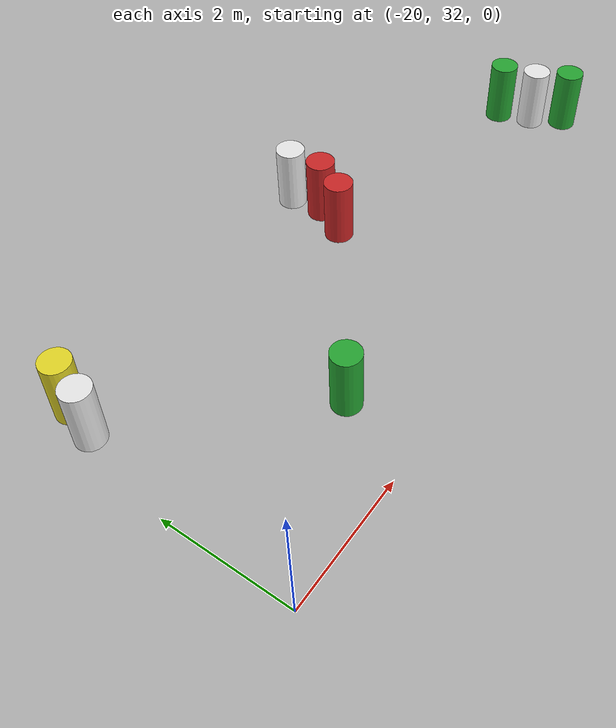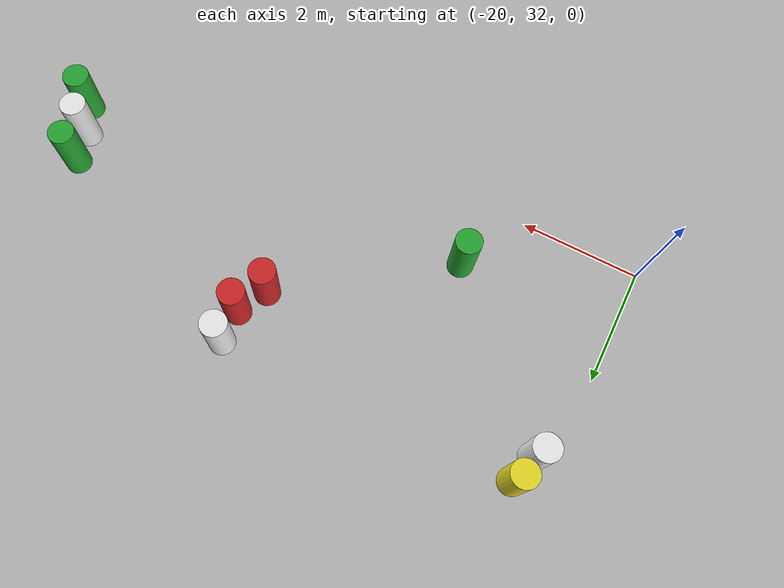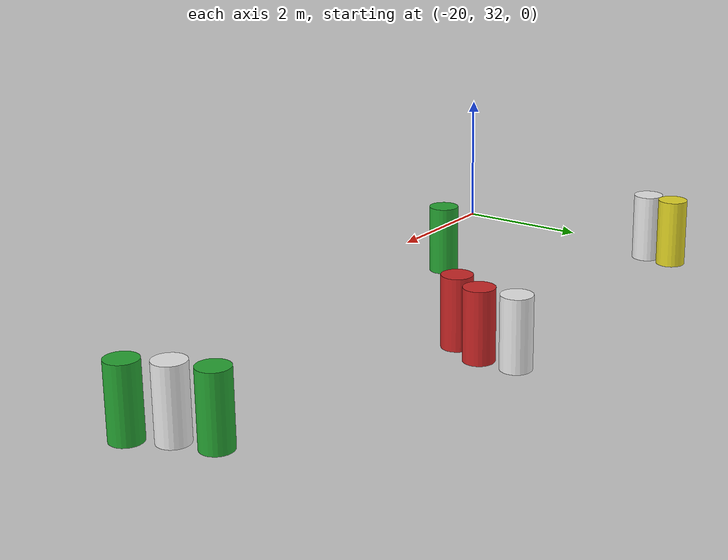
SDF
<sdf version="1.10">
 <world name="IGVC_AutoNav">
  <model name="barrel_0">
   <link name="link">
    <inertial>
     <mass>1</mass>
     <inertia>
      <ixx>0.14583299999999999</ixx>
      <ixy>0</ixy>
      <ixz>0</ixz>
      <iyy>0.14583299999999999</iyy>
      <iyz>0</iyz>
      <izz>0.125</izz>
     </inertia>
    </inertial>
    <visual name="visual">
     <geometry><cylinder><radius>0.222916</radius><length>1.0356700000000001</length></cylinder></geometry>
     <material>
      <script><name>Gazebo/Green</name><uri>file://media/materials/scripts/gazebo.material</uri></script>
      <shader type="pixel"/>
     </material>
    </visual>
    <collision name="collision">
     <geometry><cylinder><radius>0.222916</radius><length>1.0356700000000001</length></cylinder></geometry>
     <surface>
      <friction>
       <ode><mu>1</mu><mu2>1</mu2><fdir1>0 0 0</fdir1><slip1>0</slip1><slip2>0</slip2></ode>
       <torsional>
        <coefficient>1</coefficient>
        <patch_radius>0</patch_radius>
        <surface_radius>0</surface_radius>
        <use_patch_radius>true</use_patch_radius>
        <ode><slip>0</slip></ode>
       </torsional>
      </friction>
      <bounce><restitution_coefficient>0</restitution_coefficient><threshold>1000000</threshold></bounce>
      <contact>
       <collide_without_contact>false</collide_without_contact>
       <collide_without_contact_bitmask>1</collide_without_contact_bitmask>
       <collide_bitmask>1</collide_bitmask>
       <ode>
        <soft_cfm>0</soft_cfm>
        <soft_erp>0.20000000000000001</soft_erp>
        <kp>10000000000000</kp>
        <kd>1</kd>
        <max_vel>0.01</max_vel>
        <min_depth>0</min_depth>
       </ode>
       <bullet>
        <split_impulse>true</split_impulse>
        <split_impulse_penetration_threshold>-0.01</split_impulse_penetration_threshold>
        <soft_cfm>0</soft_cfm>
        <soft_erp>0.20000000000000001</soft_erp>
        <kp>10000000000000</kp>
        <kd>1</kd>
       </bullet>
      </contact>
     </surface>
    </collision>
   </link>
   <static>false</static>
   <pose>-10.530400276184082 34.562625885009766 0.48958452317623902 -1.4886732127141289e-06 -6.1759990028397762e-07 2.569076395842905e-12</pose>
  </model>
  <model name="barrel_22">
   <link name="link">
    <inertial>
     <mass>1</mass>
     <inertia>
      <ixx>0.14583299999999999</ixx>
      <ixy>0</ixy>
      <ixz>0</ixz>
      <iyy>0.14583299999999999</iyy>
      <iyz>0</iyz>
      <izz>0.125</izz>
     </inertia>
    </inertial>
    <visual name="visual">
     <geometry><cylinder><radius>0.222916</radius><length>1.0356700000000001</length></cylinder></geometry>
     <material>
      <script><name>Gazebo/White</name><uri>file://media/materials/scripts/gazebo.material</uri></script>
      <shader type="pixel"/>
     </material>
    </visual>
    <collision name="collision">
     <geometry><cylinder><radius>0.222916</radius><length>1.0356700000000001</length></cylinder></geometry>
     <surface>
      <friction>
       <ode><mu>1</mu><mu2>1</mu2><fdir1>0 0 0</fdir1><slip1>0</slip1><slip2>0</slip2></ode>
       <torsional>
        <coefficient>1</coefficient>
        <patch_radius>0</patch_radius>
        <surface_radius>0</surface_radius>
        <use_patch_radius>true</use_patch_radius>
        <ode><slip>0</slip></ode>
       </torsional>
      </friction>
      <bounce><restitution_coefficient>0</restitution_coefficient><threshold>1000000</threshold></bounce>
      <contact>
       <collide_without_contact>false</collide_without_contact>
       <collide_without_contact_bitmask>1</collide_without_contact_bitmask>
       <collide_bitmask>1</collide_bitmask>
       <ode>
        <soft_cfm>0</soft_cfm>
        <soft_erp>0.20000000000000001</soft_erp>
        <kp>10000000000000</kp>
        <kd>1</kd>
        <max_vel>0.01</max_vel>
        <min_depth>0</min_depth>
       </ode>
       <bullet>
        <split_impulse>true</split_impulse>
        <split_impulse_penetration_threshold>-0.01</split_impulse_penetration_threshold>
        <soft_cfm>0</soft_cfm>
        <soft_erp>0.20000000000000001</soft_erp>
        <kp>10000000000000</kp>
        <kd>1</kd>
       </bullet>
      </contact>
     </surface>
    </collision>
   </link>
   <static>false</static>
   <pose>-14.483590126037598 36.203399658203125 0.49048651766393375 -1.1107967514665701e-16 -2.356607832990749e-16 -1.1145869038604166e-18</pose>
  </model>
  <model name="barrel_24">
   <link name="link">
    <inertial>
     <mass>1</mass>
     <inertia>
      <ixx>0.14583299999999999</ixx>
      <ixy>0</ixy>
      <ixz>0</ixz>
      <iyy>0.14583299999999999</iyy>
      <iyz>0</iyz>
      <izz>0.125</izz>
     </inertia>
    </inertial>
    <visual name="visual">
     <geometry><cylinder><radius>0.222916</radius><length>1.0356700000000001</length></cylinder></geometry>
     <material>
      <script><name>Gazebo/White</name><uri>file://media/materials/scripts/gazebo.material</uri></script>
      <shader type="pixel"/>
     </material>
    </visual>
    <collision name="collision">
     <geometry><cylinder><radius>0.222916</radius><length>1.0356700000000001</length></cylinder></geometry>
     <surface>
      <friction>
       <ode><mu>1</mu><mu2>1</mu2><fdir1>0 0 0</fdir1><slip1>0</slip1><slip2>0</slip2></ode>
       <torsional>
        <coefficient>1</coefficient>
        <patch_radius>0</patch_radius>
        <surface_radius>0</surface_radius>
        <use_patch_radius>true</use_patch_radius>
        <ode><slip>0</slip></ode>
       </torsional>
      </friction>
      <bounce><restitution_coefficient>0</restitution_coefficient><threshold>1000000</threshold></bounce>
      <contact>
       <collide_without_contact>false</collide_without_contact>
       <collide_without_contact_bitmask>1</collide_without_contact_bitmask>
       <collide_bitmask>1</collide_bitmask>
       <ode>
        <soft_cfm>0</soft_cfm>
        <soft_erp>0.20000000000000001</soft_erp>
        <kp>10000000000000</kp>
        <kd>1</kd>
        <max_vel>0.01</max_vel>
        <min_depth>0</min_depth>
       </ode>
       <bullet>
        <split_impulse>true</split_impulse>
        <split_impulse_penetration_threshold>-0.01</split_impulse_penetration_threshold>
        <soft_cfm>0</soft_cfm>
        <soft_erp>0.20000000000000001</soft_erp>
        <kp>10000000000000</kp>
        <kd>1</kd>
       </bullet>
      </contact>
     </surface>
    </collision>
   </link>
   <static>false</static>
   <pose>-10.382210333158399 34.021792885617479 0.48974905596310941 2.9772533249613637e-06 1.2353802648623476e-06 -4.6647633560675959e-12</pose>
  </model>
  <model name="barrel_26">
   <link name="link">
    <inertial>
     <mass>1</mass>
     <inertia>
      <ixx>0.14583299999999999</ixx>
      <ixy>0</ixy>
      <ixz>0</ixz>
      <iyy>0.14583299999999999</iyy>
      <iyz>0</iyz>
      <izz>0.125</izz>
     </inertia>
    </inertial>
    <visual name="visual">
     <geometry><cylinder><radius>0.222916</radius><length>1.0356700000000001</length></cylinder></geometry>
     <material>
      <script><name>Gazebo/Red</name><uri>file://media/materials/scripts/gazebo.material</uri></script>
      <shader type="pixel"/>
     </material>
    </visual>
    <collision name="collision">
     <geometry><cylinder><radius>0.222916</radius><length>1.0356700000000001</length></cylinder></geometry>
     <surface>
      <friction>
       <ode><mu>1</mu><mu2>1</mu2><fdir1>0 0 0</fdir1><slip1>0</slip1><slip2>0</slip2></ode>
       <torsional>
        <coefficient>1</coefficient>
        <patch_radius>0</patch_radius>
        <surface_radius>0</surface_radius>
        <use_patch_radius>true</use_patch_radius>
        <ode><slip>0</slip></ode>
       </torsional>
      </friction>
      <bounce><restitution_coefficient>0</restitution_coefficient><threshold>1000000</threshold></bounce>
      <contact>
       <collide_without_contact>false</collide_without_contact>
       <collide_without_contact_bitmask>1</collide_without_contact_bitmask>
       <collide_bitmask>1</collide_bitmask>
       <ode>
        <soft_cfm>0</soft_cfm>
        <soft_erp>0.20000000000000001</soft_erp>
        <kp>10000000000000</kp>
        <kd>1</kd>
        <max_vel>0.01</max_vel>
        <min_depth>0</min_depth>
       </ode>
       <bullet>
        <split_impulse>true</split_impulse>
        <split_impulse_penetration_threshold>-0.01</split_impulse_penetration_threshold>
        <soft_cfm>0</soft_cfm>
        <soft_erp>0.20000000000000001</soft_erp>
        <kp>10000000000000</kp>
        <kd>1</kd>
       </bullet>
      </contact>
     </surface>
    </collision>
   </link>
   <static>false</static>
   <pose>-14.45680046081543 35.6458740234375 0.4894876432278748 -1.9377832968222688e-16 -2.1769077768308592e-16 3.5422885636257805e-17</pose>
  </model>
  <model name="barrel_27">
   <link name="link">
    <inertial>
     <mass>1</mass>
     <inertia>
      <ixx>0.14583299999999999</ixx>
      <ixy>0</ixy>
      <ixz>0</ixz>
      <iyy>0.14583299999999999</iyy>
      <iyz>0</iyz>
      <izz>0.125</izz>
     </inertia>
    </inertial>
    <visual name="visual">
     <geometry><cylinder><radius>0.222916</radius><length>1.0356700000000001</length></cylinder></geometry>
     <material>
      <script><name>Gazebo/Red</name><uri>file://media/materials/scripts/gazebo.material</uri></script>
      <shader type="pixel"/>
     </material>
    </visual>
    <collision name="collision">
     <geometry><cylinder><radius>0.222916</radius><length>1.0356700000000001</length></cylinder></geometry>
     <surface>
      <friction>
       <ode><mu>1</mu><mu2>1</mu2><fdir1>0 0 0</fdir1><slip1>0</slip1><slip2>0</slip2></ode>
       <torsional>
        <coefficient>1</coefficient>
        <patch_radius>0</patch_radius>
        <surface_radius>0</surface_radius>
        <use_patch_radius>true</use_patch_radius>
        <ode><slip>0</slip></ode>
       </torsional>
      </friction>
      <bounce><restitution_coefficient>0</restitution_coefficient><threshold>1000000</threshold></bounce>
      <contact>
       <collide_without_contact>false</collide_without_contact>
       <collide_without_contact_bitmask>1</collide_without_contact_bitmask>
       <collide_bitmask>1</collide_bitmask>
       <ode>
        <soft_cfm>0</soft_cfm>
        <soft_erp>0.20000000000000001</soft_erp>
        <kp>10000000000000</kp>
        <kd>1</kd>
        <max_vel>0.01</max_vel>
        <min_depth>0</min_depth>
       </ode>
       <bullet>
        <split_impulse>true</split_impulse>
        <split_impulse_penetration_threshold>-0.01</split_impulse_penetration_threshold>
        <soft_cfm>0</soft_cfm>
        <soft_erp>0.20000000000000001</soft_erp>
        <kp>10000000000000</kp>
        <kd>1</kd>
       </bullet>
      </contact>
     </surface>
    </collision>
   </link>
   <static>false</static>
   <pose>-14.709400177001953 35.132270812988281 0.49019770585612027 -9.6812229861241691e-17 6.8445163533058854e-17 -2.781063698151175e-18</pose>
  </model>
  <model name="barrel_30">
   <link name="link">
    <inertial>
     <mass>1</mass>
     <inertia>
      <ixx>0.14583299999999999</ixx>
      <ixy>0</ixy>
      <ixz>0</ixz>
      <iyy>0.14583299999999999</iyy>
      <iyz>0</iyz>
      <izz>0.125</izz>
     </inertia>
    </inertial>
    <visual name="visual">
     <geometry><cylinder><radius>0.222916</radius><length>1.0356700000000001</length></cylinder></geometry>
     <material>
      <script><name>Gazebo/Green</name><uri>file://media/materials/scripts/gazebo.material</uri></script>
      <shader type="pixel"/>
     </material>
    </visual>
    <collision name="collision">
     <geometry><cylinder><radius>0.222916</radius><length>1.0356700000000001</length></cylinder></geometry>
     <surface>
      <friction>
       <ode><mu>1</mu><mu2>1</mu2><fdir1>0 0 0</fdir1><slip1>0</slip1><slip2>0</slip2></ode>
       <torsional>
        <coefficient>1</coefficient>
        <patch_radius>0</patch_radius>
        <surface_radius>0</surface_radius>
        <use_patch_radius>true</use_patch_radius>
        <ode><slip>0</slip></ode>
       </torsional>
      </friction>
      <bounce><restitution_coefficient>0</restitution_coefficient><threshold>1000000</threshold></bounce>
      <contact>
       <collide_without_contact>false</collide_without_contact>
       <collide_without_contact_bitmask>1</collide_without_contact_bitmask>
       <collide_bitmask>1</collide_bitmask>
       <ode>
        <soft_cfm>0</soft_cfm>
        <soft_erp>0.20000000000000001</soft_erp>
        <kp>10000000000000</kp>
        <kd>1</kd>
        <max_vel>0.01</max_vel>
        <min_depth>0</min_depth>
       </ode>
       <bullet>
        <split_impulse>true</split_impulse>
        <split_impulse_penetration_threshold>-0.01</split_impulse_penetration_threshold>
        <soft_cfm>0</soft_cfm>
        <soft_erp>0.20000000000000001</soft_erp>
        <kp>10000000000000</kp>
        <kd>1</kd>
       </bullet>
      </contact>
     </surface>
    </collision>
   </link>
   <static>false</static>
   <pose>-17.321500041087312 33.171632856995899 0.47371694899537009 2.0568781118020949e-06 6.26101729795303e-07 1.7494342082150027e-09</pose>
  </model>
  <model name="barrel_31">
   <link name="link">
    <inertial>
     <mass>1</mass>
     <inertia>
      <ixx>0.14583299999999999</ixx>
      <ixy>0</ixy>
      <ixz>0</ixz>
      <iyy>0.14583299999999999</iyy>
      <iyz>0</iyz>
      <izz>0.125</izz>
     </inertia>
    </inertial>
    <visual name="visual">
     <geometry><cylinder><radius>0.222916</radius><length>1.0356700000000001</length></cylinder></geometry>
     <material>
      <script><name>Gazebo/Green</name><uri>file://media/materials/scripts/gazebo.material</uri></script>
      <shader type="pixel"/>
     </material>
    </visual>
    <collision name="collision">
     <geometry><cylinder><radius>0.222916</radius><length>1.0356700000000001</length></cylinder></geometry>
     <surface>
      <friction>
       <ode><mu>1</mu><mu2>1</mu2><fdir1>0 0 0</fdir1><slip1>0</slip1><slip2>0</slip2></ode>
       <torsional>
        <coefficient>1</coefficient>
        <patch_radius>0</patch_radius>
        <surface_radius>0</surface_radius>
        <use_patch_radius>true</use_patch_radius>
        <ode><slip>0</slip></ode>
       </torsional>
      </friction>
      <bounce><restitution_coefficient>0</restitution_coefficient><threshold>1000000</threshold></bounce>
      <contact>
       <collide_without_contact>false</collide_without_contact>
       <collide_without_contact_bitmask>1</collide_without_contact_bitmask>
       <collide_bitmask>1</collide_bitmask>
       <ode>
        <soft_cfm>0</soft_cfm>
        <soft_erp>0.20000000000000001</soft_erp>
        <kp>10000000000000</kp>
        <kd>1</kd>
        <max_vel>0.01</max_vel>
        <min_depth>0</min_depth>
       </ode>
       <bullet>
        <split_impulse>true</split_impulse>
        <split_impulse_penetration_threshold>-0.01</split_impulse_penetration_threshold>
        <soft_cfm>0</soft_cfm>
        <soft_erp>0.20000000000000001</soft_erp>
        <kp>10000000000000</kp>
        <kd>1</kd>
       </bullet>
      </contact>
     </surface>
    </collision>
   </link>
   <static>false</static>
   <pose>-10.104596138000488 33.534801483154297 0.49020029162394746 -1.2110375568972145e-16 1.4554946602714789e-16 9.1260601091329904e-18</pose>
  </model>
  <model name="barrel_32">
   <link name="link">
    <inertial>
     <mass>1</mass>
     <inertia>
      <ixx>0.14583299999999999</ixx>
      <ixy>0</ixy>
      <ixz>0</ixz>
      <iyy>0.14583299999999999</iyy>
      <iyz>0</iyz>
      <izz>0.125</izz>
     </inertia>
    </inertial>
    <visual name="visual">
     <geometry><cylinder><radius>0.222916</radius><length>1.0356700000000001</length></cylinder></geometry>
     <material>
      <script><name>Gazebo/Yellow</name><uri>file://media/materials/scripts/gazebo.material</uri></script>
      <shader type="pixel"/>
     </material>
    </visual>
    <collision name="collision">
     <geometry><cylinder><radius>0.222916</radius><length>1.0356700000000001</length></cylinder></geometry>
     <surface>
      <friction>
       <ode><mu>1</mu><mu2>1</mu2><fdir1>0 0 0</fdir1><slip1>0</slip1><slip2>0</slip2></ode>
       <torsional>
        <coefficient>1</coefficient>
        <patch_radius>0</patch_radius>
        <surface_radius>0</surface_radius>
        <use_patch_radius>true</use_patch_radius>
        <ode><slip>0</slip></ode>
       </torsional>
      </friction>
      <bounce><restitution_coefficient>0</restitution_coefficient><threshold>1000000</threshold></bounce>
      <contact>
       <collide_without_contact>false</collide_without_contact>
       <collide_without_contact_bitmask>1</collide_without_contact_bitmask>
       <collide_bitmask>1</collide_bitmask>
       <ode>
        <soft_cfm>0</soft_cfm>
        <soft_erp>0.20000000000000001</soft_erp>
        <kp>10000000000000</kp>
        <kd>1</kd>
        <max_vel>0.01</max_vel>
        <min_depth>0</min_depth>
       </ode>
       <bullet>
        <split_impulse>true</split_impulse>
        <split_impulse_penetration_threshold>-0.01</split_impulse_penetration_threshold>
        <soft_cfm>0</soft_cfm>
        <soft_erp>0.20000000000000001</soft_erp>
        <kp>10000000000000</kp>
        <kd>1</kd>
       </bullet>
      </contact>
     </surface>
    </collision>
   </link>
   <static>false</static>
   <pose>-19.487651824951172 36.035198211669922 0.51783401764546333 8.549052785967678e-17 7.0953112783709159e-17 -1.4670973031880027e-19</pose>
  </model>
  <model name="barrel_38">
   <link name="link">
    <inertial>
     <mass>1</mass>
     <inertia>
      <ixx>0.14583299999999999</ixx>
      <ixy>0</ixy>
      <ixz>0</ixz>
      <iyy>0.14583299999999999</iyy>
      <iyz>0</iyz>
      <izz>0.125</izz>
     </inertia>
    </inertial>
    <visual name="visual">
     <geometry><cylinder><radius>0.222916</radius><length>1.0356700000000001</length></cylinder></geometry>
     <material>
      <script><name>Gazebo/White</name><uri>file://media/materials/scripts/gazebo.material</uri></script>
      <shader type="pixel"/>
     </material>
    </visual>
    <collision name="collision">
     <geometry><cylinder><radius>0.222916</radius><length>1.0356700000000001</length></cylinder></geometry>
     <surface>
      <friction>
       <ode><mu>1</mu><mu2>1</mu2><fdir1>0 0 0</fdir1><slip1>0</slip1><slip2>0</slip2></ode>
       <torsional>
        <coefficient>1</coefficient>
        <patch_radius>0</patch_radius>
        <surface_radius>0</surface_radius>
        <use_patch_radius>true</use_patch_radius>
        <ode><slip>0</slip></ode>
       </torsional>
      </friction>
      <bounce><restitution_coefficient>0</restitution_coefficient><threshold>1000000</threshold></bounce>
      <contact>
       <collide_without_contact>false</collide_without_contact>
       <collide_without_contact_bitmask>1</collide_without_contact_bitmask>
       <collide_bitmask>1</collide_bitmask>
       <ode>
        <soft_cfm>0</soft_cfm>
        <soft_erp>0.20000000000000001</soft_erp>
        <kp>10000000000000</kp>
        <kd>1</kd>
        <max_vel>0.01</max_vel>
        <min_depth>0</min_depth>
       </ode>
       <bullet>
        <split_impulse>true</split_impulse>
        <split_impulse_penetration_threshold>-0.01</split_impulse_penetration_threshold>
        <soft_cfm>0</soft_cfm>
        <soft_erp>0.20000000000000001</soft_erp>
        <kp>10000000000000</kp>
        <kd>1</kd>
       </bullet>
      </contact>
     </surface>
    </collision>
   </link>
   <static>false</static>
   <pose>-19.628000259399414 35.546550750732422 0.4894414669681183 2.8348994672853864e-17 -2.8243232556501658e-17 -1.1252957357971059e-17</pose>
  </model>
 </world>
</sdf>
